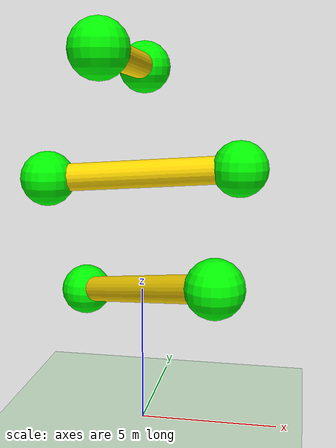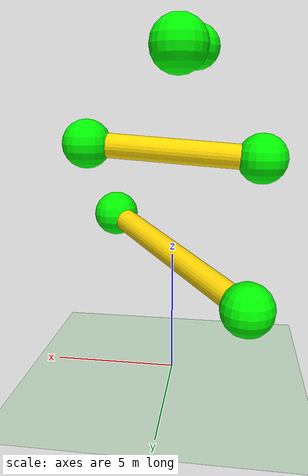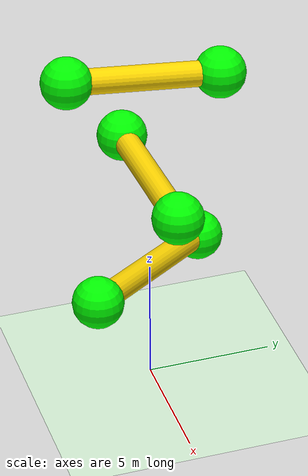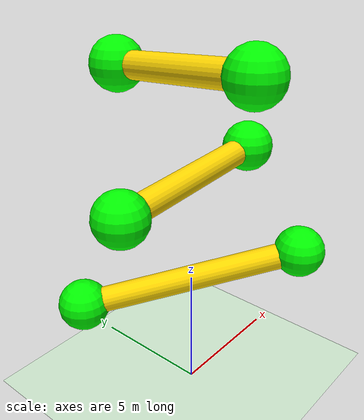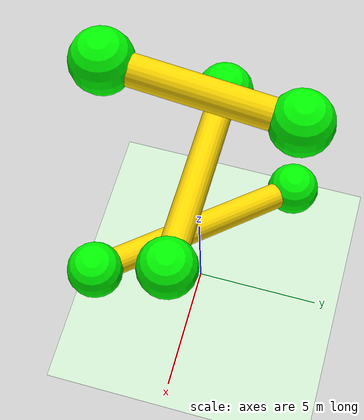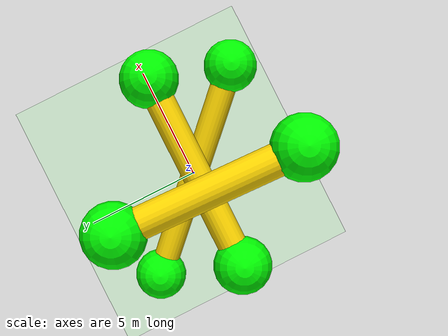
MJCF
<!--
  ~ Copyright (c) 2020.  -  present.  Kun Wang. All Rights Reserved.
  -->

<mujoco model="TT (v1.31)">
    <compiler angle="degree" coordinate="global" inertiafromgeom="true">
             <lengthrange timestep="0.001"/>
    </compiler>

    <option timestep="0.001"
            gravity="0 0 -9.81"
            solver="Newton"
            integrator="Euler"
            iterations="100">
        <flag sensornoise="disable"
            frictionloss="disable"/>
    </option>

    <visual>
        <global offwidth="1024" offheight="768"/>
    </visual>

    <default>
        <geom conaffinity="1" condim="3" contype="1" material="geom" rgba="1 .84 0 1" size="0.014"
              density="1000" friction="1.000 0.00 0.000" solref="-10000 -10"/>
        <site type="sphere" size="0.005"/>
        <tendon width="0.1" rgba="1 0 0 1" damping="10" stiffness="100"/>
        <position ctrllimited="true" ctrlrange="-100 100"/>
    </default>

    <asset>
        <texture builtin="gradient" height="100" rgb1="1 1 1" rgb2="0 0 0" type="skybox"
                 width="100"/>
        <texture builtin="flat" height="1278" mark="cross" markrgb="1 1 1" name="texgeom"
                 random="0.01" rgb1="0.8 0.6 0.4" rgb2="0.8 0.6 0.4" type="cube" width="127"/>
        <texture builtin="checker" height="100" name="texplane" rgb1="0 0 0" rgb2="0.8 0.8 0.8"
                 type="2d" width="100"/>
        <material name="MatPlane" reflectance="0.5" shininess="1" specular="1" texrepeat="30 30"
                  texture="texplane"/>
        <material name="geom" texture="texgeom" texuniform="true"/>
    </asset>

    <worldbody>

        <light cutoff="100" diffuse="1 1 1" dir="-0 0 -1.3" directional="true" exponent="1"
               pos="0 0 1.3" specular=".1 .1 .1"/>
        <geom conaffinity="1" condim="3" material="MatPlane" name="floor" pos="0 0 0"
              rgba="0.8 0.9 0.8 1" size="400 400 10" type="plane" friction="1.0 1.0 1.0"/>

        <camera name="camera" pos="-29.435 -27.974 24.311" xyaxes="0.689 -0.725 -0.000 0.372 0.354 0.858"/>

        <body name="r01">
            <geom name="r01"
                  fromto="-3    3    4.0    3   -3    6.0"
                  size="0.5"
                  type="cylinder"
                  mass="5"/>
            <geom name="s0"
                  pos="-3    3    4.0"
                  size="1"
                  type="sphere"
                  mass="1.0"
                  rgba="0 1 0 1"
            />
            <geom name="s1"
                  pos=" 3   -3    6.0"
                  size="1"
                  type="sphere"
                  mass="1.0"
                  rgba="0 1 0 1"
            />
            <freejoint name="move0_1"/>
<!--                  pos="0 0 0"-->
<!--                  size="1"-->
<!--                  type="sphere"-->
<!--                  mass="1.5"-->
<!--                  rgba="0 1 0 1"-->

        </body>
        <body name="r12">
            <geom name="r12"
                  fromto="-3.5   0   9.0   3.5   0.0  9.5"
                  size="0.5"
                  type="cylinder"
                  mass="5"/>
            <geom name="s2"
                  pos="-3.5   0   9.0"
                  size="1"
                  type="sphere"
                  mass="1.0"
                  rgba="0 1 0 1"
            />
            <geom name="s3"
                  pos="3.5   0.0  9.5"
                  size="1"
                  type="sphere"
                  mass="1.0"
                  rgba="0 1 0 1"
            />

            <freejoint name="move1_2"/>
<!--                  pos="0 0 0"-->
<!--                  size="1"-->
<!--                  type="sphere"-->
<!--                  mass="1.5"-->
<!--                  rgba="0 1 0 1"-->

        </body>
        <body name="r23">
            <geom name="r23"
                  fromto="-0.5 3 13.0  -0.7  -3    13.5"
                  size="0.5"
                  type="cylinder"
                  mass="5"/>

            <freejoint name="move2_3"/>
            <geom name="s4"
                  pos="-0.5 3 13.0"
                  size="1"
                  type="sphere"
                  mass="1.0"
                  rgba="0 1 0 1"
            />
            <geom name="s5"
                  pos="-0.7  -3    13.5"
                  size="1"
                  type="sphere"
                  mass="1.0"
                  rgba="0 1 0 1"
            />

        </body>
<!--                  fromto="0.0000 2.0000 3.5000 11.0000 11.0000 3.600"-->
<!--                  size="1"-->
<!--                  type="cylinder"-->

<!--                  pos="0 0 0"-->
<!--                  size="1"-->
<!--                  type="sphere"-->
<!--                  mass="1.5"-->
<!--                  rgba="0 1 0 1"-->

    </worldbody>

</mujoco>
